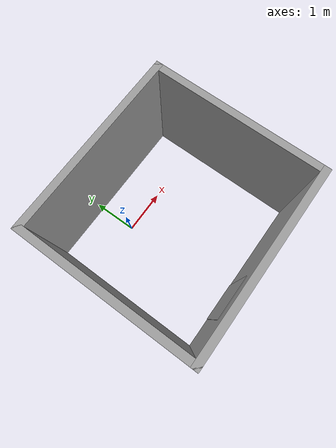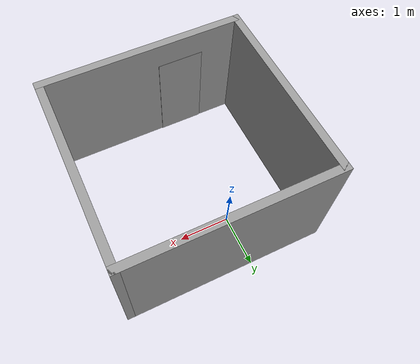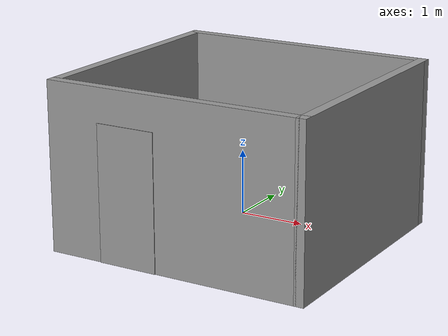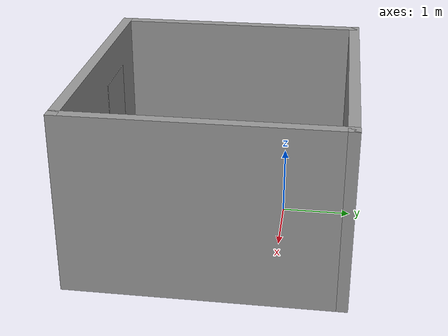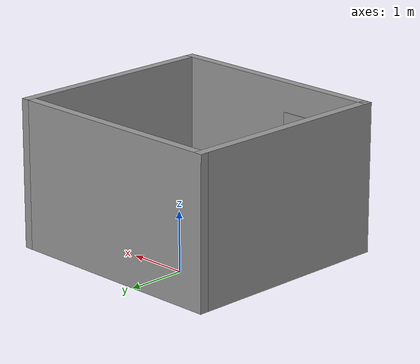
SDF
<?xml version='1.0'?>
<sdf version='1.7'>
  <model name='1door1fur'>
    <pose>0.525 -0.88 0 0 -0 0</pose>
    <link name='Door_0'>
      <collision name='Door_0_Collision'>
        <geometry>
          <box>
            <size>0.9 0.17 2</size>
          </box>
        </geometry>
        <pose>0 0 1 0 -0 0</pose>
      </collision>
      <visual name='Door_0_Visual'>
        <pose>0 0 1 0 -0 0</pose>
        <geometry>
          <box>
            <size>0.9 0.17 2</size>
          </box>
        </geometry>
        <material>
          <script>
            <uri>file://media/materials/scripts/gazebo.material</uri>
            <name>Gazebo/Grey</name>
          </script>
        </material>
      </visual>
      <pose>-0.725 -1.8 0 0 -0 0</pose>
    </link>
    <link name='Wall_0'>
      <collision name='Wall_0_Collision'>
        <geometry>
          <box>
            <size>4 0.15 2.5</size>
          </box>
        </geometry>
        <pose>0 0 1.25 0 -0 0</pose>
      </collision>
      <visual name='Wall_0_Visual'>
        <pose>0 0 1.25 0 -0 0</pose>
        <geometry>
          <box>
            <size>4 0.15 2.5</size>
          </box>
        </geometry>
        <material>
          <script>
            <uri>file://media/materials/scripts/gazebo.material</uri>
            <name>Gazebo/Grey</name>
          </script>
          <ambient>1 1 1 1</ambient>
        </material>
        <meta>
          <layer>0</layer>
        </meta>
      </visual>
      <pose>-0 -1.8 0 0 -0 0</pose>
    </link>
    <link name='Wall_1'>
      <collision name='Wall_1_Collision'>
        <geometry>
          <box>
            <size>3.75 0.15 2.5</size>
          </box>
        </geometry>
        <pose>0 0 1.25 0 -0 0</pose>
      </collision>
      <visual name='Wall_1_Visual'>
        <pose>0 0 1.25 0 -0 0</pose>
        <geometry>
          <box>
            <size>3.75 0.15 2.5</size>
          </box>
        </geometry>
        <material>
          <script>
            <uri>file://media/materials/scripts/gazebo.material</uri>
            <name>Gazebo/Grey</name>
          </script>
          <ambient>1 1 1 1</ambient>
        </material>
        <meta>
          <layer>0</layer>
        </meta>
      </visual>
      <pose>1.925 -0 0 0 -0 1.5708</pose>
    </link>
    <link name='Wall_2'>
      <collision name='Wall_2_Collision'>
        <geometry>
          <box>
            <size>4 0.15 2.5</size>
          </box>
        </geometry>
        <pose>0 0 1.25 0 -0 0</pose>
      </collision>
      <visual name='Wall_2_Visual'>
        <pose>0 0 1.25 0 -0 0</pose>
        <geometry>
          <box>
            <size>4 0.15 2.5</size>
          </box>
        </geometry>
        <material>
          <script>
            <uri>file://media/materials/scripts/gazebo.material</uri>
            <name>Gazebo/Grey</name>
          </script>
          <ambient>1 1 1 1</ambient>
        </material>
        <meta>
          <layer>0</layer>
        </meta>
      </visual>
      <pose>-0 1.8 0 0 -0 3.14159</pose>
    </link>
    <link name='Wall_3'>
      <collision name='Wall_3_Collision'>
        <geometry>
          <box>
            <size>3.75 0.15 2.5</size>
          </box>
        </geometry>
        <pose>0 0 1.25 0 -0 0</pose>
      </collision>
      <visual name='Wall_3_Visual'>
        <pose>0 0 1.25 0 -0 0</pose>
        <geometry>
          <box>
            <size>3.75 0.15 2.5</size>
          </box>
        </geometry>
        <material>
          <script>
            <uri>file://media/materials/scripts/gazebo.material</uri>
            <name>Gazebo/Grey</name>
          </script>
          <ambient>1 1 1 1</ambient>
        </material>
        <meta>
          <layer>0</layer>
        </meta>
      </visual>
      <pose>-1.925 -0 0 0 -0 -1.5708</pose>
    </link>
    <static>1</static>
  </model>
</sdf>
